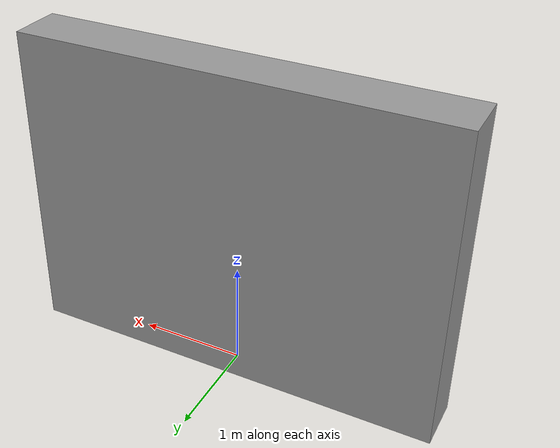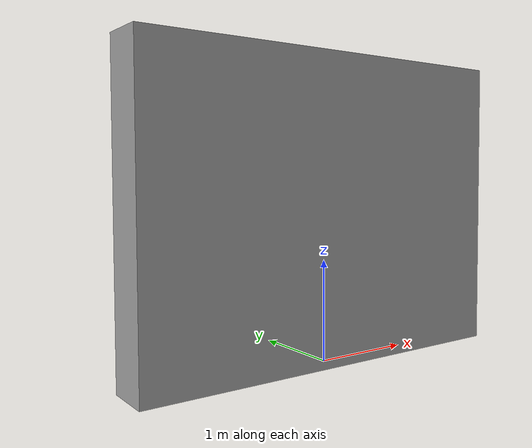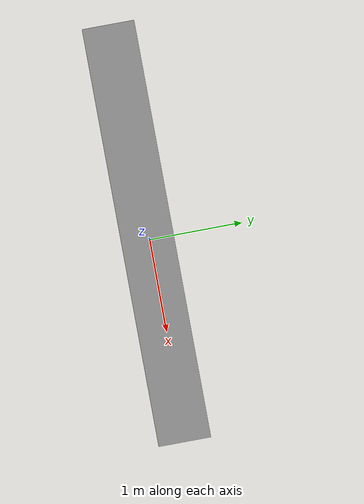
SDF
<?xml version="1.0" ?>
<sdf version="1.5">
  <model name="AIGC2_wall_4m">
    <static>true</static>
    <link name="link">
      <pose>0 0 1.5 0 0 0</pose>
      <collision name="collision">
        <geometry>
          <box>
            <size>4.0 0.5 3.0</size>
          </box>
        </geometry>
      </collision>
      <visual name="visual">
        <cast_shadows>false</cast_shadows>
        <geometry>
          <box>
            <size>4.0 0.5 3.0</size>
          </box>
        </geometry>
        <material>
          <script>
            <uri>model://AIGC2_wall_4m/materials/scripts</uri>
            <uri>model://AIGC2_wall_4m/materials/textures</uri>
            <name>vrc/grey_wall</name>
          </script>
        </material>
      </visual>
    </link>
  </model>
</sdf>
